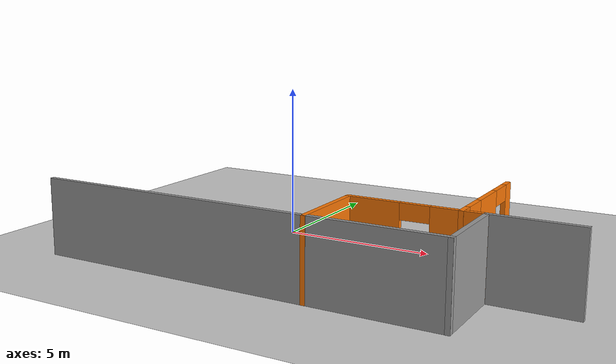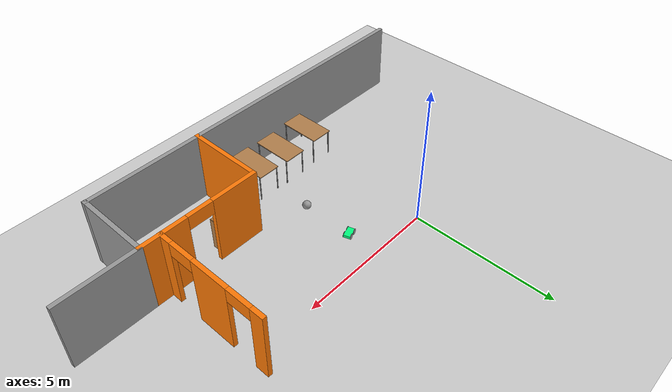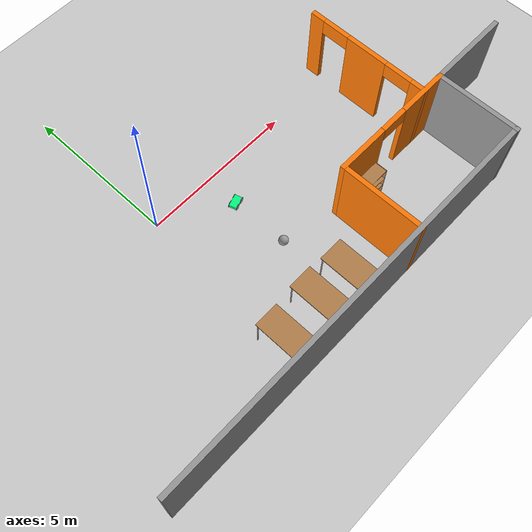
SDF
<sdf version="1.6">
 <world name="default">
  <model name="ground_plane">
   <static>1</static>
   <link name="link">
    <collision name="collision">
     <geometry><plane><normal>0 0 1</normal><size>100 100</size></plane></geometry>
     <surface><friction><ode><mu>100</mu><mu2>50</mu2></ode></friction></surface>
    </collision>
    <visual name="visual">
     <cast_shadows>0</cast_shadows>
     <geometry><plane><normal>0 0 1</normal><size>100 100</size></plane></geometry>
     <material>
      <script><uri>file://media/materials/scripts/gazebo.material</uri><name>Gazebo/Grey</name></script>
     </material>
    </visual>
   </link>
  </model>
  <model name="table_clone_2">
   <static>1</static>
   <link name="link">
    <collision name="surface">
     <pose>0 0 1 0 -0 0</pose>
     <geometry><box><size>1.5 0.8 0.03</size></box></geometry>
     <surface><friction><ode><mu>0.6</mu><mu2>0.6</mu2></ode></friction></surface>
    </collision>
    <visual name="visual1">
     <pose>0 0 1 0 -0 0</pose>
     <geometry><box><size>1.5 0.8 0.03</size></box></geometry>
     <material>
      <script><uri>file://media/materials/scripts/gazebo.material</uri><name>Gazebo/Wood</name></script>
     </material>
    </visual>
    <collision name="front_left_leg">
     <pose>0.68 0.38 0.5 0 -0 0</pose>
     <geometry><cylinder><radius>0.02</radius><length>1</length></cylinder></geometry>
    </collision>
    <visual name="front_left_leg">
     <pose>0.68 0.38 0.5 0 -0 0</pose>
     <geometry><cylinder><radius>0.02</radius><length>1</length></cylinder></geometry>
     <material>
      <script><uri>file://media/materials/scripts/gazebo.material</uri><name>Gazebo/Grey</name></script>
     </material>
    </visual>
    <collision name="front_right_leg">
     <pose>0.68 -0.38 0.5 0 -0 0</pose>
     <geometry><cylinder><radius>0.02</radius><length>1</length></cylinder></geometry>
    </collision>
    <visual name="front_right_leg">
     <pose>0.68 -0.38 0.5 0 -0 0</pose>
     <geometry><cylinder><radius>0.02</radius><length>1</length></cylinder></geometry>
     <material>
      <script><uri>file://media/materials/scripts/gazebo.material</uri><name>Gazebo/Grey</name></script>
     </material>
    </visual>
    <collision name="back_right_leg">
     <pose>-0.68 -0.38 0.5 0 -0 0</pose>
     <geometry><cylinder><radius>0.02</radius><length>1</length></cylinder></geometry>
    </collision>
    <visual name="back_right_leg">
     <pose>-0.68 -0.38 0.5 0 -0 0</pose>
     <geometry><cylinder><radius>0.02</radius><length>1</length></cylinder></geometry>
     <material>
      <script><uri>file://media/materials/scripts/gazebo.material</uri><name>Gazebo/Grey</name></script>
     </material>
    </visual>
    <collision name="back_left_leg">
     <pose>-0.68 0.38 0.5 0 -0 0</pose>
     <geometry><cylinder><radius>0.02</radius><length>1</length></cylinder></geometry>
    </collision>
    <visual name="back_left_leg">
     <pose>-0.68 0.38 0.5 0 -0 0</pose>
     <geometry><cylinder><radius>0.02</radius><length>1</length></cylinder></geometry>
     <material>
      <script><uri>file://media/materials/scripts/gazebo.material</uri><name>Gazebo/Grey</name></script>
     </material>
    </visual>
   </link>
   <pose>1.28425 -5.05118 0 0 -0 1.5707</pose>
  </model>
  <model name="table_clone_2_clone_1_clone">
   <static>1</static>
   <link name="link">
    <collision name="surface">
     <pose>0 0 1 0 -0 0</pose>
     <geometry><box><size>1.5 0.8 0.03</size></box></geometry>
     <surface><friction><ode><mu>0.6</mu><mu2>0.6</mu2></ode></friction></surface>
    </collision>
    <visual name="visual1">
     <pose>0 0 1 0 -0 0</pose>
     <geometry><box><size>1.5 0.8 0.03</size></box></geometry>
     <material>
      <script><uri>file://media/materials/scripts/gazebo.material</uri><name>Gazebo/Wood</name></script>
     </material>
    </visual>
    <collision name="front_left_leg">
     <pose>0.68 0.38 0.5 0 -0 0</pose>
     <geometry><cylinder><radius>0.02</radius><length>1</length></cylinder></geometry>
    </collision>
    <visual name="front_left_leg">
     <pose>0.68 0.38 0.5 0 -0 0</pose>
     <geometry><cylinder><radius>0.02</radius><length>1</length></cylinder></geometry>
     <material>
      <script><uri>file://media/materials/scripts/gazebo.material</uri><name>Gazebo/Grey</name></script>
     </material>
    </visual>
    <collision name="front_right_leg">
     <pose>0.68 -0.38 0.5 0 -0 0</pose>
     <geometry><cylinder><radius>0.02</radius><length>1</length></cylinder></geometry>
    </collision>
    <visual name="front_right_leg">
     <pose>0.68 -0.38 0.5 0 -0 0</pose>
     <geometry><cylinder><radius>0.02</radius><length>1</length></cylinder></geometry>
     <material>
      <script><uri>file://media/materials/scripts/gazebo.material</uri><name>Gazebo/Grey</name></script>
     </material>
    </visual>
    <collision name="back_right_leg">
     <pose>-0.68 -0.38 0.5 0 -0 0</pose>
     <geometry><cylinder><radius>0.02</radius><length>1</length></cylinder></geometry>
    </collision>
    <visual name="back_right_leg">
     <pose>-0.68 -0.38 0.5 0 -0 0</pose>
     <geometry><cylinder><radius>0.02</radius><length>1</length></cylinder></geometry>
     <material>
      <script><uri>file://media/materials/scripts/gazebo.material</uri><name>Gazebo/Grey</name></script>
     </material>
    </visual>
    <collision name="back_left_leg">
     <pose>-0.68 0.38 0.5 0 -0 0</pose>
     <geometry><cylinder><radius>0.02</radius><length>1</length></cylinder></geometry>
    </collision>
    <visual name="back_left_leg">
     <pose>-0.68 0.38 0.5 0 -0 0</pose>
     <geometry><cylinder><radius>0.02</radius><length>1</length></cylinder></geometry>
     <material>
      <script><uri>file://media/materials/scripts/gazebo.material</uri><name>Gazebo/Grey</name></script>
     </material>
    </visual>
   </link>
   <pose>-0.118114 -5.13382 0 0 -0 1.5707</pose>
  </model>
  <model name="table_clone_2_clone_1_clone_0">
   <static>1</static>
   <link name="link">
    <collision name="surface">
     <pose>0 0 1 0 -0 0</pose>
     <geometry><box><size>1.5 0.8 0.03</size></box></geometry>
     <surface><friction><ode><mu>0.6</mu><mu2>0.6</mu2></ode></friction></surface>
    </collision>
    <visual name="visual1">
     <pose>0 0 1 0 -0 0</pose>
     <geometry><box><size>1.5 0.8 0.03</size></box></geometry>
     <material>
      <script><uri>file://media/materials/scripts/gazebo.material</uri><name>Gazebo/Wood</name></script>
     </material>
    </visual>
    <collision name="front_left_leg">
     <pose>0.68 0.38 0.5 0 -0 0</pose>
     <geometry><cylinder><radius>0.02</radius><length>1</length></cylinder></geometry>
    </collision>
    <visual name="front_left_leg">
     <pose>0.68 0.38 0.5 0 -0 0</pose>
     <geometry><cylinder><radius>0.02</radius><length>1</length></cylinder></geometry>
     <material>
      <script><uri>file://media/materials/scripts/gazebo.material</uri><name>Gazebo/Grey</name></script>
     </material>
    </visual>
    <collision name="front_right_leg">
     <pose>0.68 -0.38 0.5 0 -0 0</pose>
     <geometry><cylinder><radius>0.02</radius><length>1</length></cylinder></geometry>
    </collision>
    <visual name="front_right_leg">
     <pose>0.68 -0.38 0.5 0 -0 0</pose>
     <geometry><cylinder><radius>0.02</radius><length>1</length></cylinder></geometry>
     <material>
      <script><uri>file://media/materials/scripts/gazebo.material</uri><name>Gazebo/Grey</name></script>
     </material>
    </visual>
    <collision name="back_right_leg">
     <pose>-0.68 -0.38 0.5 0 -0 0</pose>
     <geometry><cylinder><radius>0.02</radius><length>1</length></cylinder></geometry>
    </collision>
    <visual name="back_right_leg">
     <pose>-0.68 -0.38 0.5 0 -0 0</pose>
     <geometry><cylinder><radius>0.02</radius><length>1</length></cylinder></geometry>
     <material>
      <script><uri>file://media/materials/scripts/gazebo.material</uri><name>Gazebo/Grey</name></script>
     </material>
    </visual>
    <collision name="back_left_leg">
     <pose>-0.68 0.38 0.5 0 -0 0</pose>
     <geometry><cylinder><radius>0.02</radius><length>1</length></cylinder></geometry>
    </collision>
    <visual name="back_left_leg">
     <pose>-0.68 0.38 0.5 0 -0 0</pose>
     <geometry><cylinder><radius>0.02</radius><length>1</length></cylinder></geometry>
     <material>
      <script><uri>file://media/materials/scripts/gazebo.material</uri><name>Gazebo/Grey</name></script>
     </material>
    </visual>
   </link>
   <pose>2.45786 -5.09881 0 0 -0 1.5707</pose>
  </model>
  <model name="Diff_Drive_Robot">
   <link name="link_1">
    <pose>0 0 0.025 0 -0 0</pose>
    <inertial>
     <mass>1</mass>
     <inertia>
      <ixx>0.166667</ixx>
      <ixy>0</ixy>
      <ixz>0</ixz>
      <iyy>0.166667</iyy>
      <iyz>0</iyz>
      <izz>0.166667</izz>
     </inertia>
    </inertial>
    <visual name="visual">
     <geometry><box><size>0.4 0.25 0.1</size></box></geometry>
     <material>
      <lighting>1</lighting>
      <script><uri>file://media/materials/scripts/gazebo.material</uri><name>Gazebo/Grey</name></script>
      <shader type="pixel"><normal_map>__default__</normal_map></shader>
      <ambient>0 1 0.5 1</ambient>
      <diffuse>0.7 0.7 0.7 1</diffuse>
      <specular>0.01 0.01 0.01 1</specular>
      <emissive>0 0 0 1</emissive>
     </material>
    </visual>
    <collision name="collision">
     <geometry><box><size>0.4 0.25 0.1</size></box></geometry>
     <surface>
      <friction>
       <ode><mu>1</mu><mu2>1</mu2><fdir1>0 0 0</fdir1><slip1>0</slip1><slip2>0</slip2></ode>
       <torsional>
        <coefficient>1</coefficient>
        <patch_radius>0</patch_radius>
        <surface_radius>0</surface_radius>
        <use_patch_radius>1</use_patch_radius>
        <ode><slip>0</slip></ode>
       </torsional>
      </friction>
      <bounce><restitution_coefficient>0</restitution_coefficient><threshold>1e+06</threshold></bounce>
      <contact>
       <collide_without_contact>0</collide_without_contact>
       <collide_without_contact_bitmask>1</collide_without_contact_bitmask>
       <collide_bitmask>1</collide_bitmask>
       <ode>
        <soft_cfm>0</soft_cfm>
        <soft_erp>0.2</soft_erp>
        <kp>1e+13</kp>
        <kd>1</kd>
        <max_vel>0.01</max_vel>
        <min_depth>0</min_depth>
       </ode>
       <bullet>
        <split_impulse>1</split_impulse>
        <split_impulse_penetration_threshold>-0.01</split_impulse_penetration_threshold>
        <soft_cfm>0</soft_cfm>
        <soft_erp>0.2</soft_erp>
        <kp>1e+13</kp>
        <kd>1</kd>
       </bullet>
      </contact>
     </surface>
    </collision>
   </link>
   <link name="link_2">
    <pose>0.125 0.125 0.025 1.5707 -0 0</pose>
    <inertial>
     <mass>1</mass>
     <inertia><ixx>0.145833</ixx><ixy>0</ixy><ixz>0</ixz><iyy>0.145833</iyy><iyz>0</iyz><izz>0.125</izz></inertia>
    </inertial>
    <visual name="visual">
     <geometry><cylinder><radius>0.1</radius><length>0.01</length></cylinder></geometry>
     <material>
      <lighting>1</lighting>
      <script><uri>file://media/materials/scripts/gazebo.material</uri><name>Gazebo/Grey</name></script>
      <shader type="pixel"><normal_map>__default__</normal_map></shader>
      <ambient>0.3 0.3 0.3 1</ambient>
      <diffuse>0.7 0.7 0.7 1</diffuse>
      <specular>0.01 0.01 0.01 1</specular>
      <emissive>0 0 0 1</emissive>
     </material>
    </visual>
    <collision name="collision">
     <geometry><cylinder><radius>0.1</radius><length>0.01</length></cylinder></geometry>
     <surface>
      <friction>
       <ode><mu>1</mu><mu2>1</mu2><fdir1>0 0 0</fdir1><slip1>0</slip1><slip2>0</slip2></ode>
       <torsional>
        <coefficient>1</coefficient>
        <patch_radius>0</patch_radius>
        <surface_radius>0</surface_radius>
        <use_patch_radius>1</use_patch_radius>
        <ode><slip>0</slip></ode>
       </torsional>
      </friction>
      <bounce><restitution_coefficient>0</restitution_coefficient><threshold>1e+06</threshold></bounce>
      <contact>
       <collide_without_contact>0</collide_without_contact>
       <collide_without_contact_bitmask>1</collide_without_contact_bitmask>
       <collide_bitmask>1</collide_bitmask>
       <ode>
        <soft_cfm>0</soft_cfm>
        <soft_erp>0.2</soft_erp>
        <kp>1e+13</kp>
        <kd>1</kd>
        <max_vel>0.01</max_vel>
        <min_depth>0</min_depth>
       </ode>
       <bullet>
        <split_impulse>1</split_impulse>
        <split_impulse_penetration_threshold>-0.01</split_impulse_penetration_threshold>
        <soft_cfm>0</soft_cfm>
        <soft_erp>0.2</soft_erp>
        <kp>1e+13</kp>
        <kd>1</kd>
       </bullet>
      </contact>
     </surface>
    </collision>
   </link>
   <link name="link_2_clone">
    <pose>0.125 -0.125 0.025 1.5707 -0 0</pose>
    <inertial>
     <mass>1</mass>
     <inertia><ixx>0.145833</ixx><ixy>0</ixy><ixz>0</ixz><iyy>0.145833</iyy><iyz>0</iyz><izz>0.125</izz></inertia>
    </inertial>
    <visual name="visual">
     <geometry><cylinder><radius>0.1</radius><length>0.01</length></cylinder></geometry>
     <material>
      <lighting>1</lighting>
      <script><uri>file://media/materials/scripts/gazebo.material</uri><name>Gazebo/Grey</name></script>
      <shader type="pixel"><normal_map>__default__</normal_map></shader>
      <ambient>0.3 0.3 0.3 1</ambient>
      <diffuse>0.7 0.7 0.7 1</diffuse>
      <specular>0.01 0.01 0.01 1</specular>
      <emissive>0 0 0 1</emissive>
     </material>
    </visual>
    <collision name="collision">
     <geometry><cylinder><radius>0.1</radius><length>0.01</length></cylinder></geometry>
     <surface>
      <friction>
       <ode><mu>1</mu><mu2>1</mu2><fdir1>0 0 0</fdir1><slip1>0</slip1><slip2>0</slip2></ode>
       <torsional>
        <coefficient>1</coefficient>
        <patch_radius>0</patch_radius>
        <surface_radius>0</surface_radius>
        <use_patch_radius>1</use_patch_radius>
        <ode><slip>0</slip></ode>
       </torsional>
      </friction>
      <bounce><restitution_coefficient>0</restitution_coefficient><threshold>1e+06</threshold></bounce>
      <contact>
       <collide_without_contact>0</collide_without_contact>
       <collide_without_contact_bitmask>1</collide_without_contact_bitmask>
       <collide_bitmask>1</collide_bitmask>
       <ode>
        <soft_cfm>0</soft_cfm>
        <soft_erp>0.2</soft_erp>
        <kp>1e+13</kp>
        <kd>1</kd>
        <max_vel>0.01</max_vel>
        <min_depth>0</min_depth>
       </ode>
       <bullet>
        <split_impulse>1</split_impulse>
        <split_impulse_penetration_threshold>-0.01</split_impulse_penetration_threshold>
        <soft_cfm>0</soft_cfm>
        <soft_erp>0.2</soft_erp>
        <kp>1e+13</kp>
        <kd>1</kd>
       </bullet>
      </contact>
     </surface>
    </collision>
   </link>
   <link name="link_2_clone_0">
    <pose>-0.125 0.125 0.025 1.5707 -0 0</pose>
    <inertial>
     <mass>1</mass>
     <inertia><ixx>0.145833</ixx><ixy>0</ixy><ixz>0</ixz><iyy>0.145833</iyy><iyz>0</iyz><izz>0.125</izz></inertia>
    </inertial>
    <visual name="visual">
     <geometry><cylinder><radius>0.1</radius><length>0.01</length></cylinder></geometry>
     <material>
      <lighting>1</lighting>
      <script><uri>file://media/materials/scripts/gazebo.material</uri><name>Gazebo/Grey</name></script>
      <shader type="pixel"><normal_map>__default__</normal_map></shader>
      <ambient>0.3 0.3 0.3 1</ambient>
      <diffuse>0.7 0.7 0.7 1</diffuse>
      <specular>0.01 0.01 0.01 1</specular>
      <emissive>0 0 0 1</emissive>
     </material>
    </visual>
    <collision name="collision">
     <geometry><cylinder><radius>0.1</radius><length>0.01</length></cylinder></geometry>
     <surface>
      <friction>
       <ode><mu>1</mu><mu2>1</mu2><fdir1>0 0 0</fdir1><slip1>0</slip1><slip2>0</slip2></ode>
       <torsional>
        <coefficient>1</coefficient>
        <patch_radius>0</patch_radius>
        <surface_radius>0</surface_radius>
        <use_patch_radius>1</use_patch_radius>
        <ode><slip>0</slip></ode>
       </torsional>
      </friction>
      <bounce><restitution_coefficient>0</restitution_coefficient><threshold>1e+06</threshold></bounce>
      <contact>
       <collide_without_contact>0</collide_without_contact>
       <collide_without_contact_bitmask>1</collide_without_contact_bitmask>
       <collide_bitmask>1</collide_bitmask>
       <ode>
        <soft_cfm>0</soft_cfm>
        <soft_erp>0.2</soft_erp>
        <kp>1e+13</kp>
        <kd>1</kd>
        <max_vel>0.01</max_vel>
        <min_depth>0</min_depth>
       </ode>
       <bullet>
        <split_impulse>1</split_impulse>
        <split_impulse_penetration_threshold>-0.01</split_impulse_penetration_threshold>
        <soft_cfm>0</soft_cfm>
        <soft_erp>0.2</soft_erp>
        <kp>1e+13</kp>
        <kd>1</kd>
       </bullet>
      </contact>
     </surface>
    </collision>
   </link>
   <link name="link_2_clone_1">
    <pose>-0.125 -0.125 0.025 1.5707 -0 0</pose>
    <inertial>
     <mass>1</mass>
     <inertia><ixx>0.145833</ixx><ixy>0</ixy><ixz>0</ixz><iyy>0.145833</iyy><iyz>0</iyz><izz>0.125</izz></inertia>
    </inertial>
    <visual name="visual">
     <geometry><cylinder><radius>0.1</radius><length>0.01</length></cylinder></geometry>
     <material>
      <lighting>1</lighting>
      <script><uri>file://media/materials/scripts/gazebo.material</uri><name>Gazebo/Grey</name></script>
      <shader type="pixel"><normal_map>__default__</normal_map></shader>
      <ambient>0.3 0.3 0.3 1</ambient>
      <diffuse>0.7 0.7 0.7 1</diffuse>
      <specular>0.01 0.01 0.01 1</specular>
      <emissive>0 0 0 1</emissive>
     </material>
    </visual>
    <collision name="collision">
     <geometry><cylinder><radius>0.1</radius><length>0.01</length></cylinder></geometry>
     <surface>
      <friction>
       <ode><mu>1</mu><mu2>1</mu2><fdir1>0 0 0</fdir1><slip1>0</slip1><slip2>0</slip2></ode>
       <torsional>
        <coefficient>1</coefficient>
        <patch_radius>0</patch_radius>
        <surface_radius>0</surface_radius>
        <use_patch_radius>1</use_patch_radius>
        <ode><slip>0</slip></ode>
       </torsional>
      </friction>
      <bounce><restitution_coefficient>0</restitution_coefficient><threshold>1e+06</threshold></bounce>
      <contact>
       <collide_without_contact>0</collide_without_contact>
       <collide_without_contact_bitmask>1</collide_without_contact_bitmask>
       <collide_bitmask>1</collide_bitmask>
       <ode>
        <soft_cfm>0</soft_cfm>
        <soft_erp>0.2</soft_erp>
        <kp>1e+13</kp>
        <kd>1</kd>
        <max_vel>0.01</max_vel>
        <min_depth>0</min_depth>
       </ode>
       <bullet>
        <split_impulse>1</split_impulse>
        <split_impulse_penetration_threshold>-0.01</split_impulse_penetration_threshold>
        <soft_cfm>0</soft_cfm>
        <soft_erp>0.2</soft_erp>
        <kp>1e+13</kp>
        <kd>1</kd>
       </bullet>
      </contact>
     </surface>
    </collision>
   </link>
   <joint name="link_1_JOINT_1" type="revolute">
    <parent>link_1</parent>
    <child>link_2</child>
    <axis>
     <xyz>0 0 1</xyz>
     <use_parent_model_frame>0</use_parent_model_frame>
     <limit>
      <lower>-1.79769e+308</lower>
      <upper>1.79769e+308</upper>
      <effort>-1</effort>
      <velocity>-1</velocity>
     </limit>
     <dynamics>
      <spring_reference>0</spring_reference>
      <spring_stiffness>0</spring_stiffness>
      <damping>0</damping>
      <friction>0</friction>
     </dynamics>
     <use_parent_model_frame>1</use_parent_model_frame>
    </axis>
    <physics>
     <ode><limit><cfm>0</cfm><erp>0.2</erp></limit><suspension><cfm>0</cfm><erp>0.2</erp></suspension></ode>
    </physics>
   </joint>
   <joint name="link_1_JOINT_2" type="revolute">
    <parent>link_1</parent>
    <child>link_2_clone</child>
    <axis>
     <xyz>0 0 1</xyz>
     <use_parent_model_frame>0</use_parent_model_frame>
     <limit>
      <lower>-1.79769e+308</lower>
      <upper>1.79769e+308</upper>
      <effort>-1</effort>
      <velocity>-1</velocity>
     </limit>
     <dynamics>
      <spring_reference>0</spring_reference>
      <spring_stiffness>0</spring_stiffness>
      <damping>0</damping>
      <friction>0</friction>
     </dynamics>
     <use_parent_model_frame>1</use_parent_model_frame>
    </axis>
    <physics>
     <ode><limit><cfm>0</cfm><erp>0.2</erp></limit><suspension><cfm>0</cfm><erp>0.2</erp></suspension></ode>
    </physics>
   </joint>
   <joint name="link_1_JOINT_3" type="revolute">
    <parent>link_1</parent>
    <child>link_2_clone_0</child>
    <axis>
     <xyz>0 0 1</xyz>
     <use_parent_model_frame>0</use_parent_model_frame>
     <limit>
      <lower>-1.79769e+308</lower>
      <upper>1.79769e+308</upper>
      <effort>-1</effort>
      <velocity>-1</velocity>
     </limit>
     <dynamics>
      <spring_reference>0</spring_reference>
      <spring_stiffness>0</spring_stiffness>
      <damping>0</damping>
      <friction>0</friction>
     </dynamics>
     <use_parent_model_frame>1</use_parent_model_frame>
    </axis>
    <physics>
     <ode><limit><cfm>0</cfm><erp>0.2</erp></limit><suspension><cfm>0</cfm><erp>0.2</erp></suspension></ode>
    </physics>
   </joint>
   <joint name="link_1_JOINT_4" type="revolute">
    <parent>link_1</parent>
    <child>link_2_clone_1</child>
    <axis>
     <xyz>1 0 0</xyz>
     <use_parent_model_frame>0</use_parent_model_frame>
     <limit>
      <lower>-1.79769e+308</lower>
      <upper>1.79769e+308</upper>
      <effort>-1</effort>
      <velocity>-1</velocity>
     </limit>
     <dynamics>
      <spring_reference>0</spring_reference>
      <spring_stiffness>0</spring_stiffness>
      <damping>0</damping>
      <friction>0</friction>
     </dynamics>
     <use_parent_model_frame>1</use_parent_model_frame>
    </axis>
    <physics>
     <ode><limit><cfm>0</cfm><erp>0.2</erp></limit><suspension><cfm>0</cfm><erp>0.2</erp></suspension></ode>
    </physics>
   </joint>
   <static>0</static>
   <pose>2.08325 -1.13619 0.075 1e-06 -1e-06 0.305181</pose>
  </model>
  <model name="Building">
   <link name="Wall_11">
    <pose>1.2 -6.05 0 0 -0 0</pose>
    <inertial>
     <mass>1</mass>
     <inertia><ixx>1</ixx><ixy>0</ixy><ixz>0</ixz><iyy>1</iyy><iyz>0</iyz><izz>1</izz></inertia>
    </inertial>
    <visual name="Wall_11_Visual">
     <pose>0 0 1.25 0 -0 0</pose>
     <geometry><box><size>13.3 0.15 2.5</size></box></geometry>
     <material>
      <script><uri>file://media/materials/scripts/gazebo.material</uri><name>Gazebo/Grey</name></script>
      <ambient>1 1 1 1</ambient>
      <shader type="pixel"><normal_map>__default__</normal_map></shader>
      <diffuse>0.7 0.7 0.7 1</diffuse>
      <specular>0.01 0.01 0.01 1</specular>
      <emissive>0 0 0 1</emissive>
     </material>
     <meta><layer>0</layer></meta>
    </visual>
    <collision name="Wall_11_Collision">
     <pose>0 0 1.25 0 -0 0</pose>
     <geometry><box><size>13.3 0.15 2.5</size></box></geometry>
     <surface>
      <friction>
       <ode><mu>1</mu><mu2>1</mu2><fdir1>0 0 0</fdir1><slip1>0</slip1><slip2>0</slip2></ode>
       <torsional>
        <coefficient>1</coefficient>
        <patch_radius>0</patch_radius>
        <surface_radius>0</surface_radius>
        <use_patch_radius>1</use_patch_radius>
        <ode><slip>0</slip></ode>
       </torsional>
      </friction>
      <bounce><restitution_coefficient>0</restitution_coefficient><threshold>1e+06</threshold></bounce>
      <contact>
       <collide_without_contact>0</collide_without_contact>
       <collide_without_contact_bitmask>1</collide_without_contact_bitmask>
       <collide_bitmask>1</collide_bitmask>
       <ode>
        <soft_cfm>0</soft_cfm>
        <soft_erp>0.2</soft_erp>
        <kp>1e+13</kp>
        <kd>1</kd>
        <max_vel>0.01</max_vel>
        <min_depth>0</min_depth>
       </ode>
       <bullet>
        <split_impulse>1</split_impulse>
        <split_impulse_penetration_threshold>-0.01</split_impulse_penetration_threshold>
        <soft_cfm>0</soft_cfm>
        <soft_erp>0.2</soft_erp>
        <kp>1e+13</kp>
        <kd>1</kd>
       </bullet>
      </contact>
     </surface>
    </collision>
   </link>
   <link name="Wall_120">
    <pose>7.77481 -4.83428 0 0 -0 1.57077</pose>
    <inertial>
     <mass>1</mass>
     <inertia><ixx>1</ixx><ixy>0</ixy><ixz>0</ixz><iyy>1</iyy><iyz>0</iyz><izz>1</izz></inertia>
    </inertial>
    <visual name="Wall_120_Visual">
     <pose>0 0 1.25 0 -0 0</pose>
     <geometry><box><size>2.6 0.15 2.5</size></box></geometry>
     <material>
      <script><uri>file://media/materials/scripts/gazebo.material</uri><name>Gazebo/Grey</name></script>
      <ambient>1 1 1 1</ambient>
      <shader type="pixel"><normal_map>__default__</normal_map></shader>
      <diffuse>0.7 0.7 0.7 1</diffuse>
      <specular>0.01 0.01 0.01 1</specular>
      <emissive>0 0 0 1</emissive>
     </material>
     <meta><layer>0</layer></meta>
    </visual>
    <collision name="Wall_120_Collision">
     <pose>0 0 1.25 0 -0 0</pose>
     <geometry><box><size>2.6 0.15 2.5</size></box></geometry>
     <surface>
      <friction>
       <ode><mu>1</mu><mu2>1</mu2><fdir1>0 0 0</fdir1><slip1>0</slip1><slip2>0</slip2></ode>
       <torsional>
        <coefficient>1</coefficient>
        <patch_radius>0</patch_radius>
        <surface_radius>0</surface_radius>
        <use_patch_radius>1</use_patch_radius>
        <ode><slip>0</slip></ode>
       </torsional>
      </friction>
      <bounce><restitution_coefficient>0</restitution_coefficient><threshold>1e+06</threshold></bounce>
      <contact>
       <collide_without_contact>0</collide_without_contact>
       <collide_without_contact_bitmask>1</collide_without_contact_bitmask>
       <collide_bitmask>1</collide_bitmask>
       <ode>
        <soft_cfm>0</soft_cfm>
        <soft_erp>0.2</soft_erp>
        <kp>1e+13</kp>
        <kd>1</kd>
        <max_vel>0.01</max_vel>
        <min_depth>0</min_depth>
       </ode>
       <bullet>
        <split_impulse>1</split_impulse>
        <split_impulse_penetration_threshold>-0.01</split_impulse_penetration_threshold>
        <soft_cfm>0</soft_cfm>
        <soft_erp>0.2</soft_erp>
        <kp>1e+13</kp>
        <kd>1</kd>
       </bullet>
      </contact>
     </surface>
    </collision>
   </link>
   <link name="Wall_122">
    <pose>7.07785 -1.4415 0 0 -0 1.5708</pose>
    <visual name="Wall_122_Visual_0">
     <pose>-1.82998 0 1.25 0 -0 0</pose>
     <geometry><box><size>0.532998 0.15 2.5</size></box></geometry>
     <material>
      <script><uri>file://media/materials/scripts/gazebo.material</uri><name>Gazebo/Grey</name></script>
      <ambient>0.996078 0.47451 0.0196078 1</ambient>
      <shader type="pixel"/>
      <diffuse>0.7 0.7 0.7 1</diffuse>
      <specular>0.01 0.01 0.01 1</specular>
      <emissive>0 0 0 1</emissive>
     </material>
     <meta><layer>0</layer></meta>
    </visual>
    <visual name="Wall_122_Visual_1">
     <pose>0.029829 0 1.25 0 -0 0</pose>
     <geometry><box><size>1.38662 0.15 2.5</size></box></geometry>
     <material>
      <script><uri>file://media/materials/scripts/gazebo.material</uri><name>Gazebo/Grey</name></script>
      <ambient>0.996078 0.47451 0.0196078 1</ambient>
      <shader type="pixel"/>
      <diffuse>0.7 0.7 0.7 1</diffuse>
      <specular>0.01 0.01 0.01 1</specular>
      <emissive>0 0 0 1</emissive>
     </material>
     <meta><layer>0</layer></meta>
    </visual>
    <visual name="Wall_122_Visual_2">
     <pose>1.85981 0 1.25 0 -0 0</pose>
     <geometry><box><size>0.473341 0.15 2.5</size></box></geometry>
     <material>
      <script><uri>file://media/materials/scripts/gazebo.material</uri><name>Gazebo/Grey</name></script>
      <ambient>0.996078 0.47451 0.0196078 1</ambient>
      <shader type="pixel"/>
      <diffuse>0.7 0.7 0.7 1</diffuse>
      <specular>0.01 0.01 0.01 1</specular>
      <emissive>0 0 0 1</emissive>
     </material>
     <meta><layer>0</layer></meta>
    </visual>
    <visual name="Wall_122_Visual_3">
     <pose>-1.11348 0 2.25 0 -0 0</pose>
     <geometry><box><size>0.9 0.15 0.5</size></box></geometry>
     <material>
      <script><uri>file://media/materials/scripts/gazebo.material</uri><name>Gazebo/Grey</name></script>
      <ambient>0.996078 0.47451 0.0196078 1</ambient>
      <shader type="pixel"/>
      <diffuse>0.7 0.7 0.7 1</diffuse>
      <specular>0.01 0.01 0.01 1</specular>
      <emissive>0 0 0 1</emissive>
     </material>
     <meta><layer>0</layer></meta>
    </visual>
    <visual name="Wall_122_Visual_4">
     <pose>1.17314 0 2.25 0 -0 0</pose>
     <geometry><box><size>0.9 0.15 0.5</size></box></geometry>
     <material>
      <script><uri>file://media/materials/scripts/gazebo.material</uri><name>Gazebo/Grey</name></script>
      <ambient>0.996078 0.47451 0.0196078 1</ambient>
      <shader type="pixel"/>
      <diffuse>0.7 0.7 0.7 1</diffuse>
      <specular>0.01 0.01 0.01 1</specular>
      <emissive>0 0 0 1</emissive>
     </material>
     <meta><layer>0</layer></meta>
    </visual>
    <collision name="Wall_122_Collision_0">
     <pose>-1.82998 0 1.25 0 -0 0</pose>
     <geometry><box><size>0.532998 0.15 2.5</size></box></geometry>
     <surface>
      <friction>
       <ode><mu>1</mu><mu2>1</mu2><fdir1>0 0 0</fdir1><slip1>0</slip1><slip2>0</slip2></ode>
       <torsional>
        <coefficient>1</coefficient>
        <patch_radius>0</patch_radius>
        <surface_radius>0</surface_radius>
        <use_patch_radius>1</use_patch_radius>
        <ode><slip>0</slip></ode>
       </torsional>
      </friction>
      <bounce><restitution_coefficient>0</restitution_coefficient><threshold>1e+06</threshold></bounce>
      <contact>
       <collide_without_contact>0</collide_without_contact>
       <collide_without_contact_bitmask>1</collide_without_contact_bitmask>
       <collide_bitmask>1</collide_bitmask>
       <ode>
        <soft_cfm>0</soft_cfm>
        <soft_erp>0.2</soft_erp>
        <kp>1e+13</kp>
        <kd>1</kd>
        <max_vel>0.01</max_vel>
        <min_depth>0</min_depth>
       </ode>
       <bullet>
        <split_impulse>1</split_impulse>
        <split_impulse_penetration_threshold>-0.01</split_impulse_penetration_threshold>
        <soft_cfm>0</soft_cfm>
        <soft_erp>0.2</soft_erp>
        <kp>1e+13</kp>
        <kd>1</kd>
       </bullet>
      </contact>
     </surface>
    </collision>
    <collision name="Wall_122_Collision_1">
     <pose>0.029829 0 1.25 0 -0 0</pose>
     <geometry><box><size>1.38662 0.15 2.5</size></box></geometry>
     <surface>
      <friction>
       <ode><mu>1</mu><mu2>1</mu2><fdir1>0 0 0</fdir1><slip1>0</slip1><slip2>0</slip2></ode>
       <torsional>
        <coefficient>1</coefficient>
        <patch_radius>0</patch_radius>
        <surface_radius>0</surface_radius>
        <use_patch_radius>1</use_patch_radius>
        <ode><slip>0</slip></ode>
       </torsional>
      </friction>
      <bounce><restitution_coefficient>0</restitution_coefficient><threshold>1e+06</threshold></bounce>
      <contact>
       <collide_without_contact>0</collide_without_contact>
       <collide_without_contact_bitmask>1</collide_without_contact_bitmask>
       <collide_bitmask>1</collide_bitmask>
       <ode>
        <soft_cfm>0</soft_cfm>
        <soft_erp>0.2</soft_erp>
        <kp>1e+13</kp>
        <kd>1</kd>
        <max_vel>0.01</max_vel>
        <min_depth>0</min_depth>
       </ode>
       <bullet>
        <split_impulse>1</split_impulse>
        <split_impulse_penetration_threshold>-0.01</split_impulse_penetration_threshold>
        <soft_cfm>0</soft_cfm>
        <soft_erp>0.2</soft_erp>
        <kp>1e+13</kp>
        <kd>1</kd>
       </bullet>
      </contact>
     </surface>
    </collision>
    <collision name="Wall_122_Collision_3">
     <pose>-1.11348 0 2.25 0 -0 0</pose>
     <geometry><box><size>0.9 0.15 0.5</size></box></geometry>
     <surface>
      <friction>
       <ode><mu>1</mu><mu2>1</mu2><fdir1>0 0 0</fdir1><slip1>0</slip1><slip2>0</slip2></ode>
       <torsional>
        <coefficient>1</coefficient>
        <patch_radius>0</patch_radius>
        <surface_radius>0</surface_radius>
        <use_patch_radius>1</use_patch_radius>
        <ode><slip>0</slip></ode>
       </torsional>
      </friction>
      <bounce><restitution_coefficient>0</restitution_coefficient><threshold>1e+06</threshold></bounce>
      <contact>
       <collide_without_contact>0</collide_without_contact>
       <collide_without_contact_bitmask>1</collide_without_contact_bitmask>
       <collide_bitmask>1</collide_bitmask>
       <ode>
        <soft_cfm>0</soft_cfm>
        <soft_erp>0.2</soft_erp>
        <kp>1e+13</kp>
        <kd>1</kd>
        <max_vel>0.01</max_vel>
        <min_depth>0</min_depth>
       </ode>
       <bullet>
        <split_impulse>1</split_impulse>
        <split_impulse_penetration_threshold>-0.01</split_impulse_penetration_threshold>
        <soft_cfm>0</soft_cfm>
        <soft_erp>0.2</soft_erp>
        <kp>1e+13</kp>
        <kd>1</kd>
       </bullet>
      </contact>
     </surface>
    </collision>
    <collision name="Wall_122_Collision_2">
     <pose>1.85981 0 1.25 0 -0 0</pose>
     <geometry><box><size>0.473341 0.15 2.5</size></box></geometry>
     <surface>
      <friction>
       <ode><mu>1</mu><mu2>1</mu2><fdir1>0 0 0</fdir1><slip1>0</slip1><slip2>0</slip2></ode>
       <torsional>
        <coefficient>1</coefficient>
        <patch_radius>0</patch_radius>
        <surface_radius>0</surface_radius>
        <use_patch_radius>1</use_patch_radius>
        <ode><slip>0</slip></ode>
       </torsional>
      </friction>
      <bounce><restitution_coefficient>0</restitution_coefficient><threshold>1e+06</threshold></bounce>
      <contact>
       <collide_without_contact>0</collide_without_contact>
       <collide_without_contact_bitmask>1</collide_without_contact_bitmask>
       <collide_bitmask>1</collide_bitmask>
       <ode>
        <soft_cfm>0</soft_cfm>
        <soft_erp>0.2</soft_erp>
        <kp>1e+13</kp>
        <kd>1</kd>
        <max_vel>0.01</max_vel>
        <min_depth>0</min_depth>
       </ode>
       <bullet>
        <split_impulse>1</split_impulse>
        <split_impulse_penetration_threshold>-0.01</split_impulse_penetration_threshold>
        <soft_cfm>0</soft_cfm>
        <soft_erp>0.2</soft_erp>
        <kp>1e+13</kp>
        <kd>1</kd>
       </bullet>
      </contact>
     </surface>
    </collision>
    <collision name="Wall_122_Collision_4">
     <pose>1.17314 0 2.25 0 -0 0</pose>
     <geometry><box><size>0.9 0.15 0.5</size></box></geometry>
     <surface>
      <friction>
       <ode><mu>1</mu><mu2>1</mu2><fdir1>0 0 0</fdir1><slip1>0</slip1><slip2>0</slip2></ode>
       <torsional>
        <coefficient>1</coefficient>
        <patch_radius>0</patch_radius>
        <surface_radius>0</surface_radius>
        <use_patch_radius>1</use_patch_radius>
        <ode><slip>0</slip></ode>
       </torsional>
      </friction>
      <bounce><restitution_coefficient>0</restitution_coefficient><threshold>1e+06</threshold></bounce>
      <contact>
       <collide_without_contact>0</collide_without_contact>
       <collide_without_contact_bitmask>1</collide_without_contact_bitmask>
       <collide_bitmask>1</collide_bitmask>
       <ode>
        <soft_cfm>0</soft_cfm>
        <soft_erp>0.2</soft_erp>
        <kp>1e+13</kp>
        <kd>1</kd>
        <max_vel>0.01</max_vel>
        <min_depth>0</min_depth>
       </ode>
       <bullet>
        <split_impulse>1</split_impulse>
        <split_impulse_penetration_threshold>-0.01</split_impulse_penetration_threshold>
        <soft_cfm>0</soft_cfm>
        <soft_erp>0.2</soft_erp>
        <kp>1e+13</kp>
        <kd>1</kd>
       </bullet>
      </contact>
     </surface>
    </collision>
   </link>
   <link name="Wall_140">
    <pose>9.07503 -3.45679 0 0 0 -3.14144</pose>
    <visual name="Wall_140_Visual">
     <pose>0 0 1.25 0 -0 0</pose>
     <geometry><box><size>2.75 0.15 2.5</size></box></geometry>
     <material>
      <script><uri>file://media/materials/scripts/gazebo.material</uri><name>Gazebo/Grey</name></script>
      <ambient>1 1 1 1</ambient>
      <shader type="pixel"/>
      <diffuse>0.7 0.7 0.7 1</diffuse>
      <specular>0.01 0.01 0.01 1</specular>
      <emissive>0 0 0 1</emissive>
     </material>
     <meta><layer>0</layer></meta>
    </visual>
    <collision name="Wall_140_Collision">
     <pose>0 0 1.25 0 -0 0</pose>
     <geometry><box><size>2.75 0.15 2.5</size></box></geometry>
     <surface>
      <friction>
       <ode><mu>1</mu><mu2>1</mu2><fdir1>0 0 0</fdir1><slip1>0</slip1><slip2>0</slip2></ode>
       <torsional>
        <coefficient>1</coefficient>
        <patch_radius>0</patch_radius>
        <surface_radius>0</surface_radius>
        <use_patch_radius>1</use_patch_radius>
        <ode><slip>0</slip></ode>
       </torsional>
      </friction>
      <bounce><restitution_coefficient>0</restitution_coefficient><threshold>1e+06</threshold></bounce>
      <contact>
       <collide_without_contact>0</collide_without_contact>
       <collide_without_contact_bitmask>1</collide_without_contact_bitmask>
       <collide_bitmask>1</collide_bitmask>
       <ode>
        <soft_cfm>0</soft_cfm>
        <soft_erp>0.2</soft_erp>
        <kp>1e+13</kp>
        <kd>1</kd>
        <max_vel>0.01</max_vel>
        <min_depth>0</min_depth>
       </ode>
       <bullet>
        <split_impulse>1</split_impulse>
        <split_impulse_penetration_threshold>-0.01</split_impulse_penetration_threshold>
        <soft_cfm>0</soft_cfm>
        <soft_erp>0.2</soft_erp>
        <kp>1e+13</kp>
        <kd>1</kd>
       </bullet>
      </contact>
     </surface>
    </collision>
   </link>
   <link name="Wall_144">
    <pose>5.72485 -3.457 0 0 -0 3.14159</pose>
    <visual name="Wall_144_Visual_0">
     <pose>-1.29414 0 1.25 0 -0 0</pose>
     <geometry><box><size>1.66172 0.15 2.5</size></box></geometry>
     <material>
      <script><uri>file://media/materials/scripts/gazebo.material</uri><name>Gazebo/Grey</name></script>
      <ambient>0.996078 0.47451 0.0196078 1</ambient>
      <shader type="pixel"/>
      <diffuse>0.7 0.7 0.7 1</diffuse>
      <specular>0.01 0.01 0.01 1</specular>
      <emissive>0 0 0 1</emissive>
     </material>
     <meta><layer>0</layer></meta>
    </visual>
    <visual name="Wall_144_Visual_1">
     <pose>1.28086 0 1.25 0 -0 0</pose>
     <geometry><box><size>1.68829 0.15 2.5</size></box></geometry>
     <material>
      <script><uri>file://media/materials/scripts/gazebo.material</uri><name>Gazebo/Grey</name></script>
      <ambient>0.996078 0.47451 0.0196078 1</ambient>
      <shader type="pixel"/>
      <diffuse>0.7 0.7 0.7 1</diffuse>
      <specular>0.01 0.01 0.01 1</specular>
      <emissive>0 0 0 1</emissive>
     </material>
     <meta><layer>0</layer></meta>
    </visual>
    <visual name="Wall_144_Visual_2">
     <pose>-0.013285 0 2.25 0 -0 0</pose>
     <geometry><box><size>0.9 0.15 0.5</size></box></geometry>
     <material>
      <script><uri>file://media/materials/scripts/gazebo.material</uri><name>Gazebo/Grey</name></script>
      <ambient>0.996078 0.47451 0.0196078 1</ambient>
      <shader type="pixel"/>
      <diffuse>0.7 0.7 0.7 1</diffuse>
      <specular>0.01 0.01 0.01 1</specular>
      <emissive>0 0 0 1</emissive>
     </material>
     <meta><layer>0</layer></meta>
    </visual>
    <collision name="Wall_144_Collision_0">
     <pose>-1.29414 0 1.25 0 -0 0</pose>
     <geometry><box><size>1.66172 0.15 2.5</size></box></geometry>
     <surface>
      <friction>
       <ode><mu>1</mu><mu2>1</mu2><fdir1>0 0 0</fdir1><slip1>0</slip1><slip2>0</slip2></ode>
       <torsional>
        <coefficient>1</coefficient>
        <patch_radius>0</patch_radius>
        <surface_radius>0</surface_radius>
        <use_patch_radius>1</use_patch_radius>
        <ode><slip>0</slip></ode>
       </torsional>
      </friction>
      <bounce><restitution_coefficient>0</restitution_coefficient><threshold>1e+06</threshold></bounce>
      <contact>
       <collide_without_contact>0</collide_without_contact>
       <collide_without_contact_bitmask>1</collide_without_contact_bitmask>
       <collide_bitmask>1</collide_bitmask>
       <ode>
        <soft_cfm>0</soft_cfm>
        <soft_erp>0.2</soft_erp>
        <kp>1e+13</kp>
        <kd>1</kd>
        <max_vel>0.01</max_vel>
        <min_depth>0</min_depth>
       </ode>
       <bullet>
        <split_impulse>1</split_impulse>
        <split_impulse_penetration_threshold>-0.01</split_impulse_penetration_threshold>
        <soft_cfm>0</soft_cfm>
        <soft_erp>0.2</soft_erp>
        <kp>1e+13</kp>
        <kd>1</kd>
       </bullet>
      </contact>
     </surface>
    </collision>
    <collision name="Wall_144_Collision_1">
     <pose>1.28086 0 1.25 0 -0 0</pose>
     <geometry><box><size>1.68829 0.15 2.5</size></box></geometry>
     <surface>
      <friction>
       <ode><mu>1</mu><mu2>1</mu2><fdir1>0 0 0</fdir1><slip1>0</slip1><slip2>0</slip2></ode>
       <torsional>
        <coefficient>1</coefficient>
        <patch_radius>0</patch_radius>
        <surface_radius>0</surface_radius>
        <use_patch_radius>1</use_patch_radius>
        <ode><slip>0</slip></ode>
       </torsional>
      </friction>
      <bounce><restitution_coefficient>0</restitution_coefficient><threshold>1e+06</threshold></bounce>
      <contact>
       <collide_without_contact>0</collide_without_contact>
       <collide_without_contact_bitmask>1</collide_without_contact_bitmask>
       <collide_bitmask>1</collide_bitmask>
       <ode>
        <soft_cfm>0</soft_cfm>
        <soft_erp>0.2</soft_erp>
        <kp>1e+13</kp>
        <kd>1</kd>
        <max_vel>0.01</max_vel>
        <min_depth>0</min_depth>
       </ode>
       <bullet>
        <split_impulse>1</split_impulse>
        <split_impulse_penetration_threshold>-0.01</split_impulse_penetration_threshold>
        <soft_cfm>0</soft_cfm>
        <soft_erp>0.2</soft_erp>
        <kp>1e+13</kp>
        <kd>1</kd>
       </bullet>
      </contact>
     </surface>
    </collision>
    <collision name="Wall_144_Collision_2">
     <pose>-0.013285 0 2.25 0 -0 0</pose>
     <geometry><box><size>0.9 0.15 0.5</size></box></geometry>
     <surface>
      <friction>
       <ode><mu>1</mu><mu2>1</mu2><fdir1>0 0 0</fdir1><slip1>0</slip1><slip2>0</slip2></ode>
       <torsional>
        <coefficient>1</coefficient>
        <patch_radius>0</patch_radius>
        <surface_radius>0</surface_radius>
        <use_patch_radius>1</use_patch_radius>
        <ode><slip>0</slip></ode>
       </torsional>
      </friction>
      <bounce><restitution_coefficient>0</restitution_coefficient><threshold>1e+06</threshold></bounce>
      <contact>
       <collide_without_contact>0</collide_without_contact>
       <collide_without_contact_bitmask>1</collide_without_contact_bitmask>
       <collide_bitmask>1</collide_bitmask>
       <ode>
        <soft_cfm>0</soft_cfm>
        <soft_erp>0.2</soft_erp>
        <kp>1e+13</kp>
        <kd>1</kd>
        <max_vel>0.01</max_vel>
        <min_depth>0</min_depth>
       </ode>
       <bullet>
        <split_impulse>1</split_impulse>
        <split_impulse_penetration_threshold>-0.01</split_impulse_penetration_threshold>
        <soft_cfm>0</soft_cfm>
        <soft_erp>0.2</soft_erp>
        <kp>1e+13</kp>
        <kd>1</kd>
       </bullet>
      </contact>
     </surface>
    </collision>
   </link>
   <link name="Wall_145">
    <pose>3.67485 -4.757 0 0 0 -1.5708</pose>
    <visual name="Wall_145_Visual">
     <pose>0 0 1.25 0 -0 0</pose>
     <geometry><box><size>2.75 0.15 2.5</size></box></geometry>
     <material>
      <script><uri>file://media/materials/scripts/gazebo.material</uri><name>Gazebo/Grey</name></script>
      <ambient>0.996078 0.47451 0.0196078 1</ambient>
      <shader type="pixel"/>
      <diffuse>0.7 0.7 0.7 1</diffuse>
      <specular>0.01 0.01 0.01 1</specular>
      <emissive>0 0 0 1</emissive>
     </material>
     <meta><layer>0</layer></meta>
    </visual>
    <collision name="Wall_145_Collision">
     <pose>0 0 1.25 0 -0 0</pose>
     <geometry><box><size>2.75 0.15 2.5</size></box></geometry>
     <surface>
      <friction>
       <ode><mu>1</mu><mu2>1</mu2><fdir1>0 0 0</fdir1><slip1>0</slip1><slip2>0</slip2></ode>
       <torsional>
        <coefficient>1</coefficient>
        <patch_radius>0</patch_radius>
        <surface_radius>0</surface_radius>
        <use_patch_radius>1</use_patch_radius>
        <ode><slip>0</slip></ode>
       </torsional>
      </friction>
      <bounce><restitution_coefficient>0</restitution_coefficient><threshold>1e+06</threshold></bounce>
      <contact>
       <collide_without_contact>0</collide_without_contact>
       <collide_without_contact_bitmask>1</collide_without_contact_bitmask>
       <collide_bitmask>1</collide_bitmask>
       <ode>
        <soft_cfm>0</soft_cfm>
        <soft_erp>0.2</soft_erp>
        <kp>1e+13</kp>
        <kd>1</kd>
        <max_vel>0.01</max_vel>
        <min_depth>0</min_depth>
       </ode>
       <bullet>
        <split_impulse>1</split_impulse>
        <split_impulse_penetration_threshold>-0.01</split_impulse_penetration_threshold>
        <soft_cfm>0</soft_cfm>
        <soft_erp>0.2</soft_erp>
        <kp>1e+13</kp>
        <kd>1</kd>
       </bullet>
      </contact>
     </surface>
    </collision>
   </link>
   <static>1</static>
   <pose>0.2098 0.03522 0 0 -0 0</pose>
  </model>
  <model name="bookshelf">
   <static>1</static>
   <link name="link">
    <inertial><mass>1</mass></inertial>
    <collision name="back">
     <pose>0 0.005 0.6 0 -0 0</pose>
     <geometry><box><size>0.9 0.01 1.2</size></box></geometry>
    </collision>
    <visual name="visual1">
     <pose>0 0.005 0.6 0 -0 0</pose>
     <geometry><box><size>0.9 0.01 1.2</size></box></geometry>
     <material>
      <script><uri>file://media/materials/scripts/gazebo.material</uri><name>Gazebo/Wood</name></script>
     </material>
    </visual>
    <collision name="left_side">
     <pose>0.45 -0.195 0.6 0 -0 0</pose>
     <geometry><box><size>0.02 0.4 1.2</size></box></geometry>
    </collision>
    <visual name="visual2">
     <pose>0.45 -0.195 0.6 0 -0 0</pose>
     <geometry><box><size>0.02 0.4 1.2</size></box></geometry>
     <material>
      <script><uri>file://media/materials/scripts/gazebo.material</uri><name>Gazebo/Wood</name></script>
     </material>
    </visual>
    <collision name="right_side">
     <pose>-0.45 -0.195 0.6 0 -0 0</pose>
     <geometry><box><size>0.02 0.4 1.2</size></box></geometry>
    </collision>
    <visual name="visual3">
     <pose>-0.45 -0.195 0.6 0 -0 0</pose>
     <geometry><box><size>0.02 0.4 1.2</size></box></geometry>
     <material>
      <script><uri>file://media/materials/scripts/gazebo.material</uri><name>Gazebo/Wood</name></script>
     </material>
    </visual>
    <collision name="bottom">
     <pose>0 -0.195 0.03 0 -0 0</pose>
     <geometry><box><size>0.88 0.4 0.06</size></box></geometry>
    </collision>
    <visual name="visual4">
     <pose>0 -0.195 0.03 0 -0 0</pose>
     <geometry><box><size>0.88 0.4 0.06</size></box></geometry>
     <material>
      <script><uri>file://media/materials/scripts/gazebo.material</uri><name>Gazebo/Wood</name></script>
     </material>
    </visual>
    <collision name="top">
     <pose>0 -0.195 1.19 0 -0 0</pose>
     <geometry><box><size>0.88 0.4 0.02</size></box></geometry>
    </collision>
    <visual name="visual5">
     <pose>0 -0.195 1.19 0 -0 0</pose>
     <geometry><box><size>0.88 0.4 0.02</size></box></geometry>
     <material>
      <script><uri>file://media/materials/scripts/gazebo.material</uri><name>Gazebo/Wood</name></script>
     </material>
    </visual>
    <collision name="low_shelf">
     <pose>0 -0.195 0.43 0 -0 0</pose>
     <geometry><box><size>0.88 0.4 0.02</size></box></geometry>
    </collision>
    <visual name="visual6">
     <pose>0 -0.195 0.43 0 -0 0</pose>
     <geometry><box><size>0.88 0.4 0.02</size></box></geometry>
     <material>
      <script><uri>file://media/materials/scripts/gazebo.material</uri><name>Gazebo/Wood</name></script>
     </material>
    </visual>
    <collision name="high_shelf">
     <pose>0 -0.195 0.8 0 -0 0</pose>
     <geometry><box><size>0.88 0.4 0.02</size></box></geometry>
    </collision>
    <visual name="visual7">
     <pose>0 -0.195 0.8 0 -0 0</pose>
     <geometry><box><size>0.88 0.4 0.02</size></box></geometry>
     <material>
      <script><uri>file://media/materials/scripts/gazebo.material</uri><name>Gazebo/Wood</name></script>
     </material>
    </visual>
   </link>
   <pose>4.84818 -3.55958 0 0 -0 0</pose>
  </model>
  <model name="ball">
   <link name="link_1">
    <inertial>
     <mass>1</mass>
     <inertia><ixx>0.1</ixx><ixy>0</ixy><ixz>0</ixz><iyy>0.1</iyy><iyz>0</iyz><izz>0.1</izz></inertia>
    </inertial>
    <visual name="visual">
     <geometry><sphere><radius>0.15</radius></sphere></geometry>
     <material>
      <lighting>1</lighting>
      <script><uri>file://media/materials/scripts/gazebo.material</uri><name>Gazebo/Grey</name></script>
      <shader type="pixel"><normal_map>__default__</normal_map></shader>
      <ambient>1 1 1 1</ambient>
      <diffuse>1 1 1 1</diffuse>
      <specular>1 1 1 1</specular>
      <emissive>1 1 1 1</emissive>
     </material>
    </visual>
    <collision name="collision">
     <geometry><sphere><radius>0.15</radius></sphere></geometry>
     <surface>
      <friction>
       <ode><mu>1</mu><mu2>1</mu2><fdir1>0 0 0</fdir1><slip1>0</slip1><slip2>0</slip2></ode>
       <torsional>
        <coefficient>1</coefficient>
        <patch_radius>0</patch_radius>
        <surface_radius>0</surface_radius>
        <use_patch_radius>1</use_patch_radius>
        <ode><slip>0</slip></ode>
       </torsional>
      </friction>
      <bounce><restitution_coefficient>0</restitution_coefficient><threshold>1e+06</threshold></bounce>
      <contact>
       <collide_without_contact>0</collide_without_contact>
       <collide_without_contact_bitmask>1</collide_without_contact_bitmask>
       <collide_bitmask>1</collide_bitmask>
       <ode>
        <soft_cfm>0</soft_cfm>
        <soft_erp>0.2</soft_erp>
        <kp>1e+13</kp>
        <kd>1</kd>
        <max_vel>0.01</max_vel>
        <min_depth>0</min_depth>
       </ode>
       <bullet>
        <split_impulse>1</split_impulse>
        <split_impulse_penetration_threshold>-0.01</split_impulse_penetration_threshold>
        <soft_cfm>0</soft_cfm>
        <soft_erp>0.2</soft_erp>
        <kp>1e+13</kp>
        <kd>1</kd>
       </bullet>
      </contact>
     </surface>
    </collision>
   </link>
   <static>0</static>
   <pose>2.11079 -2.99533 0.15 0 -0 0</pose>
  </model>
 </world>
</sdf>
